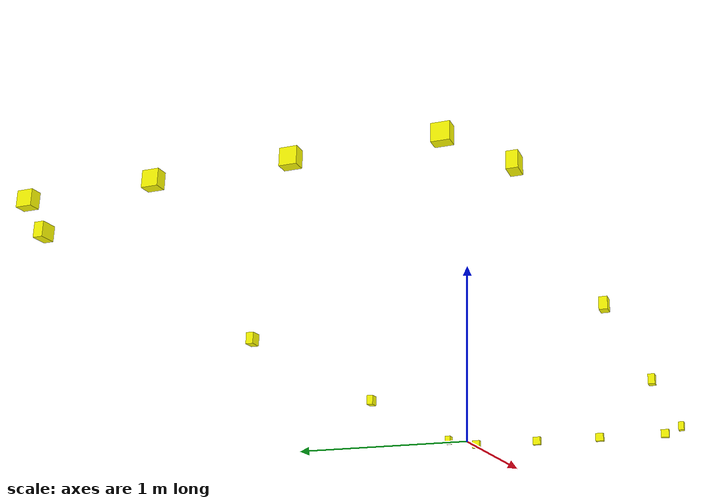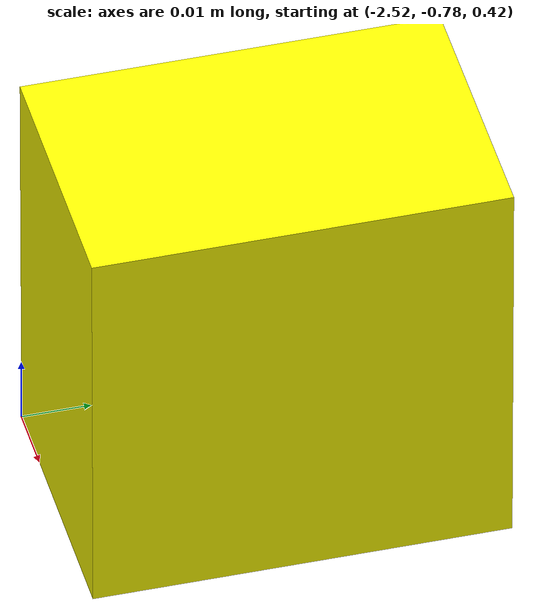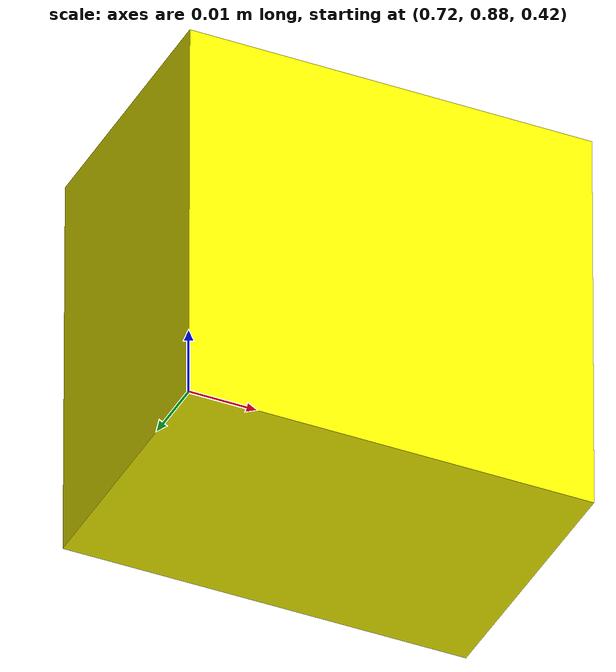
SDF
<?xml version='1.0' encoding='utf-8'?>
<sdf version="1.9">
  <model name="ultrasonic_rig">
    <static>true</static>
    <link name="ultrasonic_front_left_outer_mount">
      <visual name="front_left_outer_housing">
        <pose>2.5 0.75 0.45 0 0 0</pose>
        <geometry>
          <box>
            <size>0.04 0.06 0.06</size>
          </box>
        </geometry>
        <material>
          <ambient>1 1 0 1</ambient>
          <diffuse>1 1 0 1</diffuse>
        </material>
      </visual>
      <sensor name="front_left_outer" type="gpu_lidar">
        <pose>2.54 0.75 0.45 0 0 0.6981317008</pose>
        <always_on>true</always_on>
        <update_rate>10</update_rate>
        <lidar>
          <scan>
            <horizontal>
              <samples>80</samples>
              <resolution>1</resolution>
              <min_angle>-0.8726646260</min_angle>
              <max_angle>0.8726646260</max_angle>
            </horizontal>
            <vertical>
              <samples>16</samples>
              <resolution>1</resolution>
              <min_angle>-0.5235987756</min_angle>
              <max_angle>0.5235987756</max_angle>
            </vertical>
          </scan>
          <range>
            <min>0.15</min>
            <max>5</max>
            <resolution>0.01</resolution>
          </range>
        </lidar>
      </sensor>
    </link>
    <link name="ultrasonic_front_left_inner_mount">
      <visual name="front_left_inner_housing">
        <pose>2.5 0.25 0.45 0 0 0</pose>
        <geometry>
          <box>
            <size>0.04 0.06 0.06</size>
          </box>
        </geometry>
        <material>
          <ambient>1 1 0 1</ambient>
          <diffuse>1 1 0 1</diffuse>
        </material>
      </visual>
      <sensor name="front_left_inner" type="gpu_lidar">
        <pose>2.54 0.25 0.45 0 0 0.1745329252</pose>
        <always_on>true</always_on>
        <update_rate>10</update_rate>
        <lidar>
          <scan>
            <horizontal>
              <samples>80</samples>
              <resolution>1</resolution>
              <min_angle>-0.8726646260</min_angle>
              <max_angle>0.8726646260</max_angle>
            </horizontal>
            <vertical>
              <samples>16</samples>
              <resolution>1</resolution>
              <min_angle>-0.5235987756</min_angle>
              <max_angle>0.5235987756</max_angle>
            </vertical>
          </scan>
          <range>
            <min>0.15</min>
            <max>5</max>
            <resolution>0.01</resolution>
          </range>
        </lidar>
      </sensor>
    </link>
    <link name="ultrasonic_front_right_inner_mount">
      <visual name="front_right_inner_housing">
        <pose>2.5 -0.25 0.45 0 0 0</pose>
        <geometry>
          <box>
            <size>0.04 0.06 0.06</size>
          </box>
        </geometry>
        <material>
          <ambient>1 1 0 1</ambient>
          <diffuse>1 1 0 1</diffuse>
        </material>
      </visual>
      <sensor name="front_right_inner" type="gpu_lidar">
        <pose>2.54 -0.25 0.45 0 0 -0.1745329252</pose>
        <always_on>true</always_on>
        <update_rate>10</update_rate>
        <lidar>
          <scan>
            <horizontal>
              <samples>80</samples>
              <resolution>1</resolution>
              <min_angle>-0.8726646260</min_angle>
              <max_angle>0.8726646260</max_angle>
            </horizontal>
            <vertical>
              <samples>16</samples>
              <resolution>1</resolution>
              <min_angle>-0.5235987756</min_angle>
              <max_angle>0.5235987756</max_angle>
            </vertical>
          </scan>
          <range>
            <min>0.15</min>
            <max>5</max>
            <resolution>0.01</resolution>
          </range>
        </lidar>
      </sensor>
    </link>
    <link name="ultrasonic_front_right_outer_mount">
      <visual name="front_right_outer_housing">
        <pose>2.5 -0.75 0.45 0 0 0</pose>
        <geometry>
          <box>
            <size>0.04 0.06 0.06</size>
          </box>
        </geometry>
        <material>
          <ambient>1 1 0 1</ambient>
          <diffuse>1 1 0 1</diffuse>
        </material>
      </visual>
      <sensor name="front_right_outer" type="gpu_lidar">
        <pose>2.54 -0.75 0.45 0 0 -0.6981317008</pose>
        <always_on>true</always_on>
        <update_rate>10</update_rate>
        <lidar>
          <scan>
            <horizontal>
              <samples>80</samples>
              <resolution>1</resolution>
              <min_angle>-0.8726646260</min_angle>
              <max_angle>0.8726646260</max_angle>
            </horizontal>
            <vertical>
              <samples>16</samples>
              <resolution>1</resolution>
              <min_angle>-0.5235987756</min_angle>
              <max_angle>0.5235987756</max_angle>
            </vertical>
          </scan>
          <range>
            <min>0.15</min>
            <max>5</max>
            <resolution>0.01</resolution>
          </range>
        </lidar>
      </sensor>
    </link>
    <link name="ultrasonic_rear_left_outer_mount">
      <visual name="rear_left_outer_housing">
        <pose>-2.5 0.75 0.45 0 0 0</pose>
        <geometry>
          <box>
            <size>0.04 0.06 0.06</size>
          </box>
        </geometry>
        <material>
          <ambient>1 1 0 1</ambient>
          <diffuse>1 1 0 1</diffuse>
        </material>
      </visual>
      <sensor name="rear_left_outer" type="gpu_lidar">
        <pose>-2.54 0.75 0.45 0 0 2.4434609528</pose>
        <always_on>true</always_on>
        <update_rate>10</update_rate>
        <lidar>
          <scan>
            <horizontal>
              <samples>80</samples>
              <resolution>1</resolution>
              <min_angle>-0.8726646260</min_angle>
              <max_angle>0.8726646260</max_angle>
            </horizontal>
            <vertical>
              <samples>16</samples>
              <resolution>1</resolution>
              <min_angle>-0.5235987756</min_angle>
              <max_angle>0.5235987756</max_angle>
            </vertical>
          </scan>
          <range>
            <min>0.15</min>
            <max>5</max>
            <resolution>0.01</resolution>
          </range>
        </lidar>
      </sensor>
    </link>
    <link name="ultrasonic_rear_left_inner_mount">
      <visual name="rear_left_inner_housing">
        <pose>-2.5 0.25 0.45 0 0 0</pose>
        <geometry>
          <box>
            <size>0.04 0.06 0.06</size>
          </box>
        </geometry>
        <material>
          <ambient>1 1 0 1</ambient>
          <diffuse>1 1 0 1</diffuse>
        </material>
      </visual>
      <sensor name="rear_left_inner" type="gpu_lidar">
        <pose>-2.54 0.25 0.45 0 0 2.9670597284</pose>
        <always_on>true</always_on>
        <update_rate>10</update_rate>
        <lidar>
          <scan>
            <horizontal>
              <samples>80</samples>
              <resolution>1</resolution>
              <min_angle>-0.8726646260</min_angle>
              <max_angle>0.8726646260</max_angle>
            </horizontal>
            <vertical>
              <samples>16</samples>
              <resolution>1</resolution>
              <min_angle>-0.5235987756</min_angle>
              <max_angle>0.5235987756</max_angle>
            </vertical>
          </scan>
          <range>
            <min>0.15</min>
            <max>5</max>
            <resolution>0.01</resolution>
          </range>
        </lidar>
      </sensor>
    </link>
    <link name="ultrasonic_rear_right_inner_mount">
      <visual name="rear_right_inner_housing">
        <pose>-2.5 -0.25 0.45 0 0 0</pose>
        <geometry>
          <box>
            <size>0.04 0.06 0.06</size>
          </box>
        </geometry>
        <material>
          <ambient>1 1 0 1</ambient>
          <diffuse>1 1 0 1</diffuse>
        </material>
      </visual>
      <sensor name="rear_right_inner" type="gpu_lidar">
        <pose>-2.54 -0.25 0.45 0 0 3.3161255788</pose>
        <always_on>true</always_on>
        <update_rate>10</update_rate>
        <lidar>
          <scan>
            <horizontal>
              <samples>80</samples>
              <resolution>1</resolution>
              <min_angle>-0.8726646260</min_angle>
              <max_angle>0.8726646260</max_angle>
            </horizontal>
            <vertical>
              <samples>16</samples>
              <resolution>1</resolution>
              <min_angle>-0.5235987756</min_angle>
              <max_angle>0.5235987756</max_angle>
            </vertical>
          </scan>
          <range>
            <min>0.15</min>
            <max>5</max>
            <resolution>0.01</resolution>
          </range>
        </lidar>
      </sensor>
    </link>
    <link name="ultrasonic_rear_right_outer_mount">
      <visual name="rear_right_outer_housing">
        <pose>-2.5 -0.75 0.45 0 0 0</pose>
        <geometry>
          <box>
            <size>0.04 0.06 0.06</size>
          </box>
        </geometry>
        <material>
          <ambient>1 1 0 1</ambient>
          <diffuse>1 1 0 1</diffuse>
        </material>
      </visual>
      <sensor name="rear_right_outer" type="gpu_lidar">
        <pose>-2.54 -0.75 0.45 0 0 3.8397243544</pose>
        <always_on>true</always_on>
        <update_rate>10</update_rate>
        <lidar>
          <scan>
            <horizontal>
              <samples>80</samples>
              <resolution>1</resolution>
              <min_angle>-0.8726646260</min_angle>
              <max_angle>0.8726646260</max_angle>
            </horizontal>
            <vertical>
              <samples>16</samples>
              <resolution>1</resolution>
              <min_angle>-0.5235987756</min_angle>
              <max_angle>0.5235987756</max_angle>
            </vertical>
          </scan>
          <range>
            <min>0.15</min>
            <max>5</max>
            <resolution>0.01</resolution>
          </range>
        </lidar>
      </sensor>
    </link>
    <link name="ultrasonic_side_left_front_mount">
      <visual name="side_left_front_housing">
        <pose>2.25 0.9 0.45 0 0 0</pose>
        <geometry>
          <box>
            <size>0.06 0.04 0.06</size>
          </box>
        </geometry>
        <material>
          <ambient>1 1 0 1</ambient>
          <diffuse>1 1 0 1</diffuse>
        </material>
      </visual>
      <sensor name="side_left_front" type="gpu_lidar">
        <pose>2.25 0.94 0.45 0 0 1.3089969390</pose>
        <always_on>true</always_on>
        <update_rate>10</update_rate>
        <lidar>
          <scan>
            <horizontal>
              <samples>80</samples>
              <resolution>1</resolution>
              <min_angle>-0.8726646260</min_angle>
              <max_angle>0.8726646260</max_angle>
            </horizontal>
            <vertical>
              <samples>16</samples>
              <resolution>1</resolution>
              <min_angle>-0.5235987756</min_angle>
              <max_angle>0.5235987756</max_angle>
            </vertical>
          </scan>
          <range>
            <min>0.15</min>
            <max>5</max>
            <resolution>0.01</resolution>
          </range>
        </lidar>
      </sensor>
    </link>
    <link name="ultrasonic_side_left_mid_front_mount">
      <visual name="side_left_mid_front_housing">
        <pose>0.75 0.9 0.45 0 0 0</pose>
        <geometry>
          <box>
            <size>0.06 0.04 0.06</size>
          </box>
        </geometry>
        <material>
          <ambient>1 1 0 1</ambient>
          <diffuse>1 1 0 1</diffuse>
        </material>
      </visual>
      <sensor name="side_left_mid_front" type="gpu_lidar">
        <pose>0.75 0.94 0.45 0 0 1.5707963268</pose>
        <always_on>true</always_on>
        <update_rate>10</update_rate>
        <lidar>
          <scan>
            <horizontal>
              <samples>80</samples>
              <resolution>1</resolution>
              <min_angle>-0.8726646260</min_angle>
              <max_angle>0.8726646260</max_angle>
            </horizontal>
            <vertical>
              <samples>16</samples>
              <resolution>1</resolution>
              <min_angle>-0.5235987756</min_angle>
              <max_angle>0.5235987756</max_angle>
            </vertical>
          </scan>
          <range>
            <min>0.15</min>
            <max>5</max>
            <resolution>0.01</resolution>
          </range>
        </lidar>
      </sensor>
    </link>
    <link name="ultrasonic_side_left_mid_rear_mount">
      <visual name="side_left_mid_rear_housing">
        <pose>-0.75 0.9 0.45 0 0 0</pose>
        <geometry>
          <box>
            <size>0.06 0.04 0.06</size>
          </box>
        </geometry>
        <material>
          <ambient>1 1 0 1</ambient>
          <diffuse>1 1 0 1</diffuse>
        </material>
      </visual>
      <sensor name="side_left_mid_rear" type="gpu_lidar">
        <pose>-0.75 0.94 0.45 0 0 1.5707963268</pose>
        <always_on>true</always_on>
        <update_rate>10</update_rate>
        <lidar>
          <scan>
            <horizontal>
              <samples>80</samples>
              <resolution>1</resolution>
              <min_angle>-0.8726646260</min_angle>
              <max_angle>0.8726646260</max_angle>
            </horizontal>
            <vertical>
              <samples>16</samples>
              <resolution>1</resolution>
              <min_angle>-0.5235987756</min_angle>
              <max_angle>0.5235987756</max_angle>
            </vertical>
          </scan>
          <range>
            <min>0.15</min>
            <max>5</max>
            <resolution>0.01</resolution>
          </range>
        </lidar>
      </sensor>
    </link>
    <link name="ultrasonic_side_left_rear_mount">
      <visual name="side_left_rear_housing">
        <pose>-2.25 0.9 0.45 0 0 0</pose>
        <geometry>
          <box>
            <size>0.06 0.04 0.06</size>
          </box>
        </geometry>
        <material>
          <ambient>1 1 0 1</ambient>
          <diffuse>1 1 0 1</diffuse>
        </material>
      </visual>
      <sensor name="side_left_rear" type="gpu_lidar">
        <pose>-2.25 0.94 0.45 0 0 1.8325957146</pose>
        <always_on>true</always_on>
        <update_rate>10</update_rate>
        <lidar>
          <scan>
            <horizontal>
              <samples>80</samples>
              <resolution>1</resolution>
              <min_angle>-0.8726646260</min_angle>
              <max_angle>0.8726646260</max_angle>
            </horizontal>
            <vertical>
              <samples>16</samples>
              <resolution>1</resolution>
              <min_angle>-0.5235987756</min_angle>
              <max_angle>0.5235987756</max_angle>
            </vertical>
          </scan>
          <range>
            <min>0.15</min>
            <max>5</max>
            <resolution>0.01</resolution>
          </range>
        </lidar>
      </sensor>
    </link>
    <link name="ultrasonic_side_right_front_mount">
      <visual name="side_right_front_housing">
        <pose>2.25 -0.9 0.45 0 0 0</pose>
        <geometry>
          <box>
            <size>0.06 0.04 0.06</size>
          </box>
        </geometry>
        <material>
          <ambient>1 1 0 1</ambient>
          <diffuse>1 1 0 1</diffuse>
        </material>
      </visual>
      <sensor name="side_right_front" type="gpu_lidar">
        <pose>2.25 -0.94 0.45 0 0 -1.3089969390</pose>
        <always_on>true</always_on>
        <update_rate>10</update_rate>
        <lidar>
          <scan>
            <horizontal>
              <samples>80</samples>
              <resolution>1</resolution>
              <min_angle>-0.8726646260</min_angle>
              <max_angle>0.8726646260</max_angle>
            </horizontal>
            <vertical>
              <samples>16</samples>
              <resolution>1</resolution>
              <min_angle>-0.5235987756</min_angle>
              <max_angle>0.5235987756</max_angle>
            </vertical>
          </scan>
          <range>
            <min>0.15</min>
            <max>5</max>
            <resolution>0.01</resolution>
          </range>
        </lidar>
      </sensor>
    </link>
    <link name="ultrasonic_side_right_mid_front_mount">
      <visual name="side_right_mid_front_housing">
        <pose>0.75 -0.9 0.45 0 0 0</pose>
        <geometry>
          <box>
            <size>0.06 0.04 0.06</size>
          </box>
        </geometry>
        <material>
          <ambient>1 1 0 1</ambient>
          <diffuse>1 1 0 1</diffuse>
        </material>
      </visual>
      <sensor name="side_right_mid_front" type="gpu_lidar">
        <pose>0.75 -0.94 0.45 0 0 -1.5707963268</pose>
        <always_on>true</always_on>
        <update_rate>10</update_rate>
        <lidar>
          <scan>
            <horizontal>
              <samples>80</samples>
              <resolution>1</resolution>
              <min_angle>-0.8726646260</min_angle>
              <max_angle>0.8726646260</max_angle>
            </horizontal>
            <vertical>
              <samples>16</samples>
              <resolution>1</resolution>
              <min_angle>-0.5235987756</min_angle>
              <max_angle>0.5235987756</max_angle>
            </vertical>
          </scan>
          <range>
            <min>0.15</min>
            <max>5</max>
            <resolution>0.01</resolution>
          </range>
        </lidar>
      </sensor>
    </link>
    <link name="ultrasonic_side_right_mid_rear_mount">
      <visual name="side_right_mid_rear_housing">
        <pose>-0.75 -0.9 0.45 0 0 0</pose>
        <geometry>
          <box>
            <size>0.06 0.04 0.06</size>
          </box>
        </geometry>
        <material>
          <ambient>1 1 0 1</ambient>
          <diffuse>1 1 0 1</diffuse>
        </material>
      </visual>
      <sensor name="side_right_mid_rear" type="gpu_lidar">
        <pose>-0.75 -0.94 0.45 0 0 -1.5707963268</pose>
        <always_on>true</always_on>
        <update_rate>10</update_rate>
        <lidar>
          <scan>
            <horizontal>
              <samples>80</samples>
              <resolution>1</resolution>
              <min_angle>-0.8726646260</min_angle>
              <max_angle>0.8726646260</max_angle>
            </horizontal>
            <vertical>
              <samples>16</samples>
              <resolution>1</resolution>
              <min_angle>-0.5235987756</min_angle>
              <max_angle>0.5235987756</max_angle>
            </vertical>
          </scan>
          <range>
            <min>0.15</min>
            <max>5</max>
            <resolution>0.01</resolution>
          </range>
        </lidar>
      </sensor>
    </link>
    <link name="ultrasonic_side_right_rear_mount">
      <visual name="side_right_rear_housing">
        <pose>-2.25 -0.9 0.45 0 0 0</pose>
        <geometry>
          <box>
            <size>0.06 0.04 0.06</size>
          </box>
        </geometry>
        <material>
          <ambient>1 1 0 1</ambient>
          <diffuse>1 1 0 1</diffuse>
        </material>
      </visual>
      <sensor name="side_right_rear" type="gpu_lidar">
        <pose>-2.25 -0.94 0.45 0 0 -1.8325957146</pose>
        <always_on>true</always_on>
        <update_rate>10</update_rate>
        <lidar>
          <scan>
            <horizontal>
              <samples>80</samples>
              <resolution>1</resolution>
              <min_angle>-0.8726646260</min_angle>
              <max_angle>0.8726646260</max_angle>
            </horizontal>
            <vertical>
              <samples>16</samples>
              <resolution>1</resolution>
              <min_angle>-0.5235987756</min_angle>
              <max_angle>0.5235987756</max_angle>
            </vertical>
          </scan>
          <range>
            <min>0.15</min>
            <max>5</max>
            <resolution>0.01</resolution>
          </range>
        </lidar>
      </sensor>
    </link>
  </model>
</sdf>
